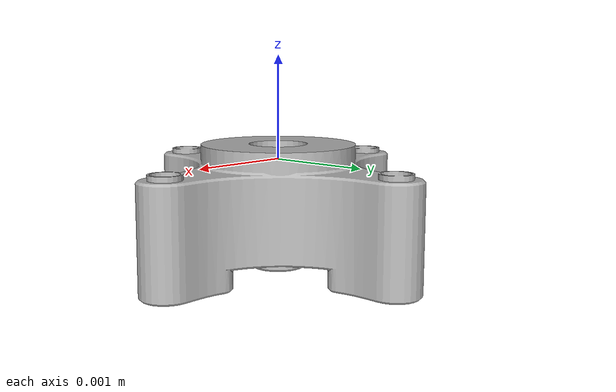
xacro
<?xml version="1.0" ?>
<robot name="HubAdapter" xmlns:xacro="http://www.ros.org/wiki/xacro">

<xacro:include filename="$(find HubAdapter_description)/urdf/materials.xacro" />
<xacro:include filename="$(find HubAdapter_description)/urdf/HubAdapter.trans" />
<xacro:include filename="$(find HubAdapter_description)/urdf/HubAdapter.gazebo" />
<link name="base_link">
  <inertial>
    <origin rpy="0 0 0" xyz="4.490754814073159e-14 9.768158105354089e-16 -0.011760711575205036"/>
    <mass value="0.42940294705508114"/>
    <inertia ixx="0.000137" ixy="-0.0" ixz="0.0" iyy="0.000137" iyz="0.0" izz="0.000222"/>
  </inertial>
  <visual>
    <origin rpy="0 0 0" xyz="0 0 0"/>
    <geometry>
      <mesh filename="package://HubAdapter_description/meshes/base_link.stl" scale="0.001 0.001 0.001"/>
    </geometry>
    <material name="silver"/>
  </visual>
  <collision>
    <origin rpy="0 0 0" xyz="0 0 0"/>
    <geometry>
      <mesh filename="package://HubAdapter_description/meshes/base_link.stl" scale="0.001 0.001 0.001"/>
    </geometry>
  </collision>
</link>

</robot>

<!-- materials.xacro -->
<robot name="HubAdapter" xmlns:xacro="http://www.ros.org/wiki/xacro" >

<material name="silver">
  <color rgba="0.700 0.700 0.700 1.000"/>
</material>

</robot>

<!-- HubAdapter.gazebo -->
<robot name="HubAdapter" xmlns:xacro="http://www.ros.org/wiki/xacro" >

<xacro:property name="body_color" value="Gazebo/Silver" />

<gazebo>
  <plugin filename="libgazebo_ros_control.so" name="control"/>
</gazebo>
<gazebo reference="base_link">
  <material>${body_color}</material>
  <mu1>0.2</mu1>
  <mu2>0.2</mu2>
  <selfCollide>true</selfCollide>
  <gravity>true</gravity>
</gazebo>

</robot>
